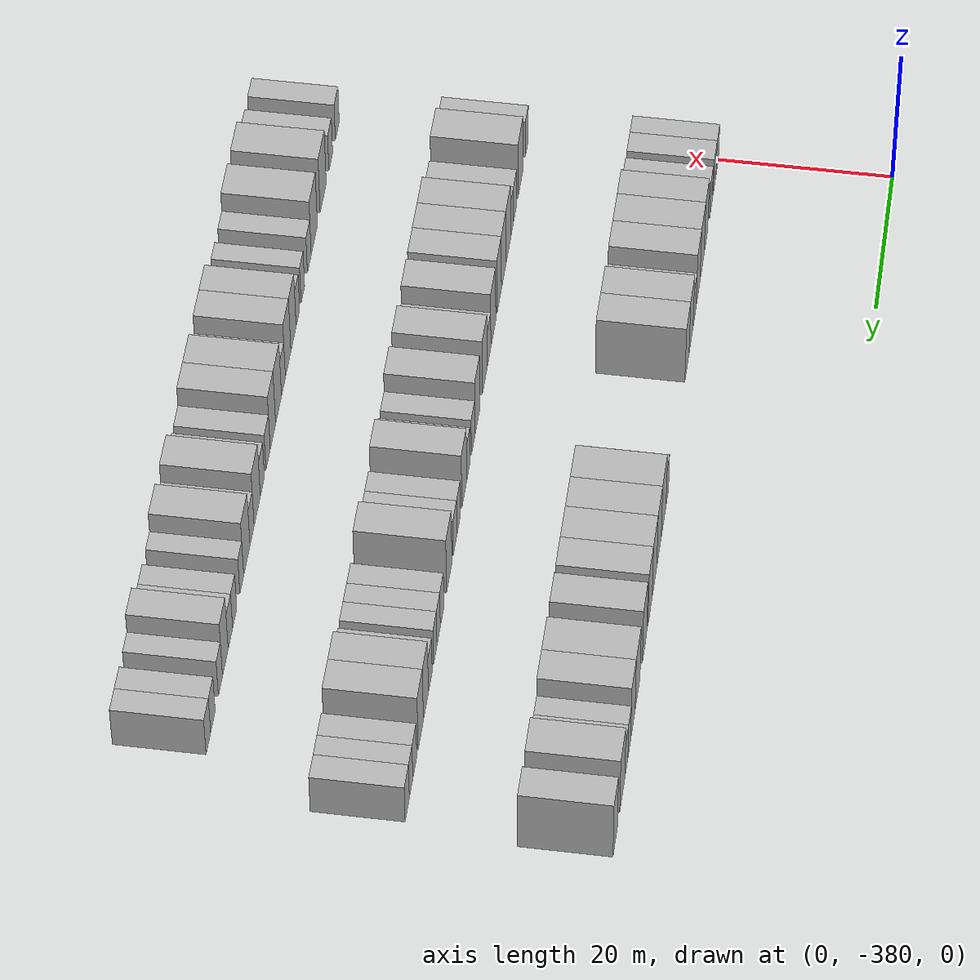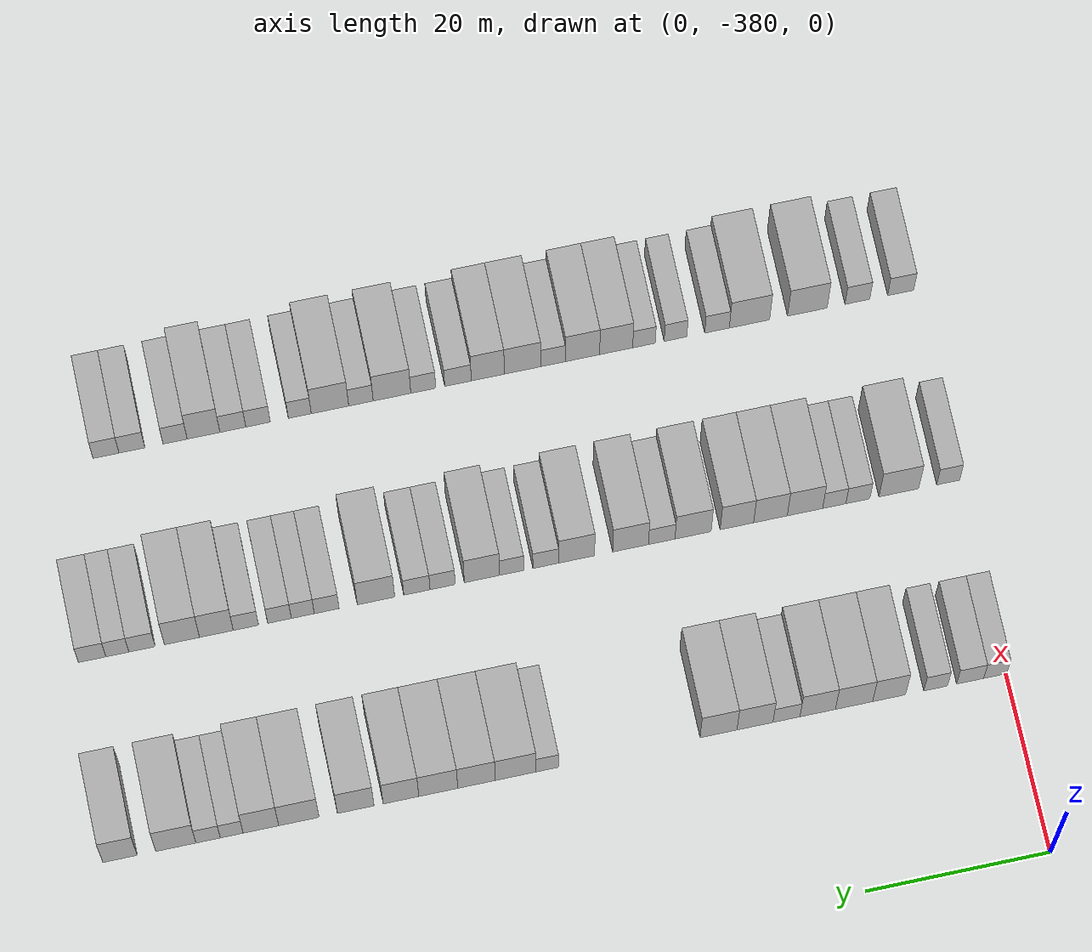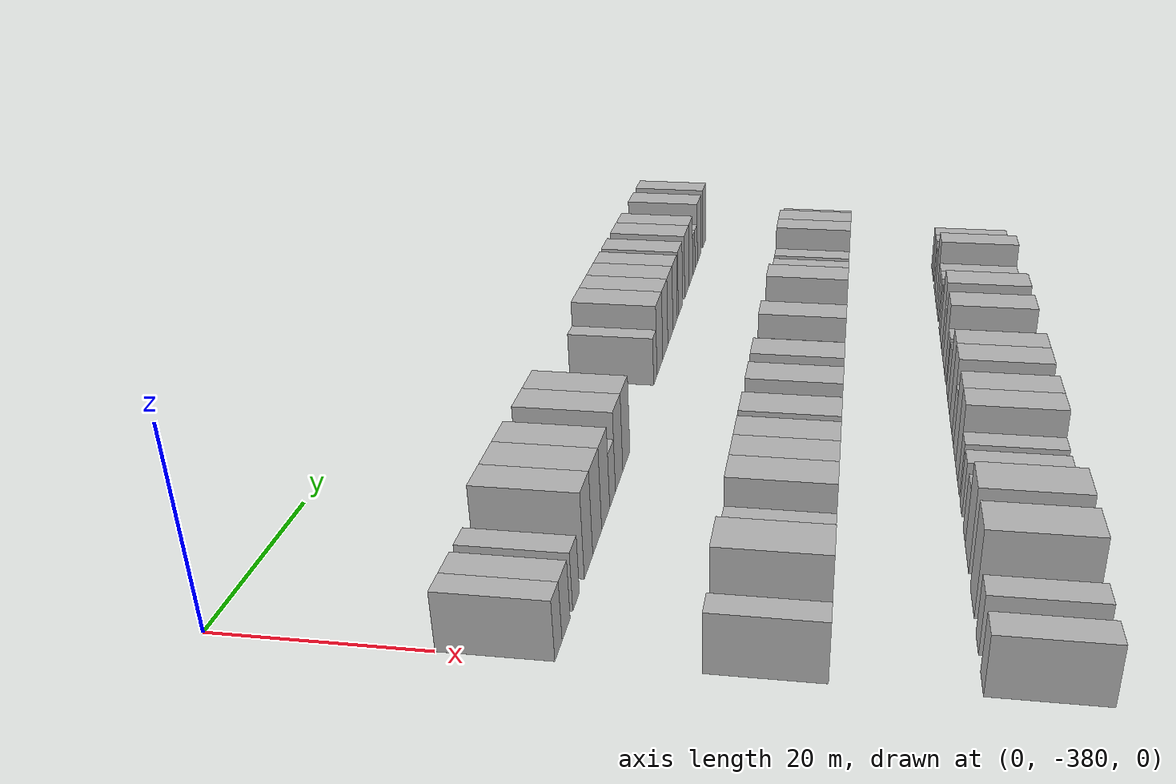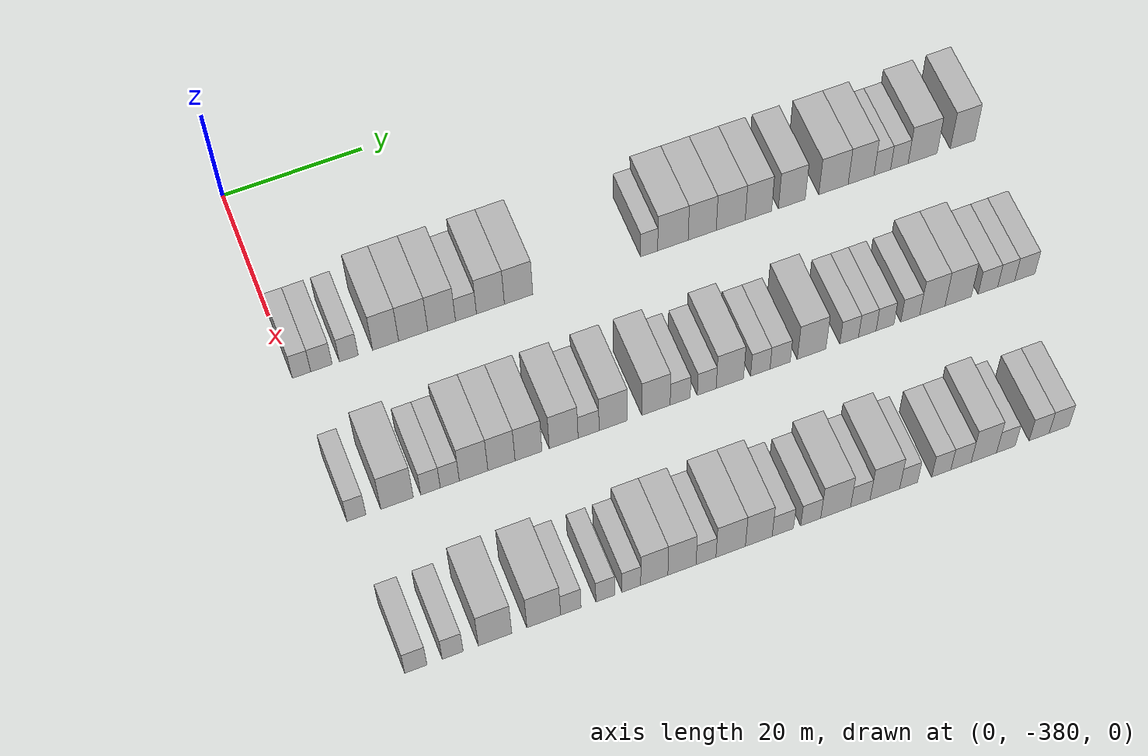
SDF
<sdf version="1.6">
 <world name="default">
  <model name="building_1">
   <static>1</static>
   <pose>25.0000 -378.7344 0 0.000000 0.000000 0.000000</pose>
   <link name="link">
    <pose>0 0 3.00 0 0 0</pose>
    <collision name="collision"><geometry><box><size>10.0000 2.5312 6.0000</size></box></geometry></collision>
    <visual name="visual">
     <cast_shadows>0</cast_shadows>
     <geometry><box><size>10.0000 2.5312 6.0000</size></box></geometry>
     <material>
      <script>
       <uri>model://HANNAS_wall/materials/scripts</uri>
       <uri>model://HANNAS_wall/materials/textures</uri>
       <name>vrc/HANNAS_wall</name>
      </script>
     </material>
    </visual>
   </link>
  </model>
  <model name="building_2">
   <static>1</static>
   <pose>25.0000 -375.9882 0 0.000000 0.000000 0.000000</pose>
   <link name="link">
    <pose>0 0 3.00 0 0 0</pose>
    <collision name="collision"><geometry><box><size>10.0000 2.9612 6.0000</size></box></geometry></collision>
    <visual name="visual">
     <cast_shadows>0</cast_shadows>
     <geometry><box><size>10.0000 2.9612 6.0000</size></box></geometry>
     <material>
      <script>
       <uri>model://HANNAS_wall/materials/scripts</uri>
       <uri>model://HANNAS_wall/materials/textures</uri>
       <name>vrc/HANNAS_wall</name>
      </script>
     </material>
    </visual>
   </link>
  </model>
  <model name="building_3">
   <static>1</static>
   <pose>25.0000 -372.2033 0 0.000000 0.000000 0.000000</pose>
   <link name="link">
    <pose>0 0 3.00 0 0 0</pose>
    <collision name="collision"><geometry><box><size>10.0000 2.6086 6.0000</size></box></geometry></collision>
    <visual name="visual">
     <cast_shadows>0</cast_shadows>
     <geometry><box><size>10.0000 2.6086 6.0000</size></box></geometry>
     <material>
      <script>
       <uri>model://HANNAS_wall/materials/scripts</uri>
       <uri>model://HANNAS_wall/materials/textures</uri>
       <name>vrc/HANNAS_wall</name>
      </script>
     </material>
    </visual>
   </link>
  </model>
  <model name="building_4">
   <static>1</static>
   <pose>25.0000 -367.0871 0 0.000000 0.000000 0.000000</pose>
   <link name="link">
    <pose>0 0 4.50 0 0 0</pose>
    <collision name="collision"><geometry><box><size>10.0000 3.6238 9.0000</size></box></geometry></collision>
    <visual name="visual">
     <cast_shadows>0</cast_shadows>
     <geometry><box><size>10.0000 3.6238 9.0000</size></box></geometry>
     <material>
      <script>
       <uri>model://HANNAS_wall/materials/scripts</uri>
       <uri>model://HANNAS_wall/materials/textures</uri>
       <name>vrc/HANNAS_wall</name>
      </script>
     </material>
    </visual>
   </link>
  </model>
  <model name="building_5">
   <static>1</static>
   <pose>25.0000 -363.2377 0 0.000000 0.000000 0.000000</pose>
   <link name="link">
    <pose>0 0 4.50 0 0 0</pose>
    <collision name="collision"><geometry><box><size>10.0000 4.0750 9.0000</size></box></geometry></collision>
    <visual name="visual">
     <cast_shadows>0</cast_shadows>
     <geometry><box><size>10.0000 4.0750 9.0000</size></box></geometry>
     <material>
      <script>
       <uri>model://HANNAS_wall/materials/scripts</uri>
       <uri>model://HANNAS_wall/materials/textures</uri>
       <name>vrc/HANNAS_wall</name>
      </script>
     </material>
    </visual>
   </link>
  </model>
  <model name="building_6">
   <static>1</static>
   <pose>25.0000 -359.2548 0 0.000000 0.000000 0.000000</pose>
   <link name="link">
    <pose>0 0 4.50 0 0 0</pose>
    <collision name="collision"><geometry><box><size>10.0000 3.8908 9.0000</size></box></geometry></collision>
    <visual name="visual">
     <cast_shadows>0</cast_shadows>
     <geometry><box><size>10.0000 3.8908 9.0000</size></box></geometry>
     <material>
      <script>
       <uri>model://HANNAS_wall/materials/scripts</uri>
       <uri>model://HANNAS_wall/materials/textures</uri>
       <name>vrc/HANNAS_wall</name>
      </script>
     </material>
    </visual>
   </link>
  </model>
  <model name="building_7">
   <static>1</static>
   <pose>25.0000 -355.8367 0 0.000000 0.000000 0.000000</pose>
   <link name="link">
    <pose>0 0 3.00 0 0 0</pose>
    <collision name="collision"><geometry><box><size>10.0000 2.9455 6.0000</size></box></geometry></collision>
    <visual name="visual">
     <cast_shadows>0</cast_shadows>
     <geometry><box><size>10.0000 2.9455 6.0000</size></box></geometry>
     <material>
      <script>
       <uri>model://HANNAS_wall/materials/scripts</uri>
       <uri>model://HANNAS_wall/materials/textures</uri>
       <name>vrc/HANNAS_wall</name>
      </script>
     </material>
    </visual>
   </link>
  </model>
  <model name="building_8">
   <static>1</static>
   <pose>25.0000 -352.3905 0 0.000000 0.000000 0.000000</pose>
   <link name="link">
    <pose>0 0 4.50 0 0 0</pose>
    <collision name="collision"><geometry><box><size>10.0000 3.9468 9.0000</size></box></geometry></collision>
    <visual name="visual">
     <cast_shadows>0</cast_shadows>
     <geometry><box><size>10.0000 3.9468 9.0000</size></box></geometry>
     <material>
      <script>
       <uri>model://HANNAS_wall/materials/scripts</uri>
       <uri>model://HANNAS_wall/materials/textures</uri>
       <name>vrc/HANNAS_wall</name>
      </script>
     </material>
    </visual>
   </link>
  </model>
  <model name="building_9">
   <static>1</static>
   <pose>25.0000 -348.4032 0 0.000000 0.000000 0.000000</pose>
   <link name="link">
    <pose>0 0 4.50 0 0 0</pose>
    <collision name="collision"><geometry><box><size>10.0000 4.0279 9.0000</size></box></geometry></collision>
    <visual name="visual">
     <cast_shadows>0</cast_shadows>
     <geometry><box><size>10.0000 4.0279 9.0000</size></box></geometry>
     <material>
      <script>
       <uri>model://HANNAS_wall/materials/scripts</uri>
       <uri>model://HANNAS_wall/materials/textures</uri>
       <name>vrc/HANNAS_wall</name>
      </script>
     </material>
    </visual>
   </link>
  </model>
  <model name="building_10">
   <static>1</static>
   <pose>25.0000 -329.7060 0 0.000000 0.000000 0.000000</pose>
   <link name="link">
    <pose>0 0 3.00 0 0 0</pose>
    <collision name="collision"><geometry><box><size>10.0000 2.4555 6.0000</size></box></geometry></collision>
    <visual name="visual">
     <cast_shadows>0</cast_shadows>
     <geometry><box><size>10.0000 2.4555 6.0000</size></box></geometry>
     <material>
      <script>
       <uri>model://HANNAS_wall/materials/scripts</uri>
       <uri>model://HANNAS_wall/materials/textures</uri>
       <name>vrc/HANNAS_wall</name>
      </script>
     </material>
    </visual>
   </link>
  </model>
  <model name="building_11">
   <static>1</static>
   <pose>25.0000 -326.2691 0 0.000000 0.000000 0.000000</pose>
   <link name="link">
    <pose>0 0 4.50 0 0 0</pose>
    <collision name="collision"><geometry><box><size>10.0000 4.4183 9.0000</size></box></geometry></collision>
    <visual name="visual">
     <cast_shadows>0</cast_shadows>
     <geometry><box><size>10.0000 4.4183 9.0000</size></box></geometry>
     <material>
      <script>
       <uri>model://HANNAS_wall/materials/scripts</uri>
       <uri>model://HANNAS_wall/materials/textures</uri>
       <name>vrc/HANNAS_wall</name>
      </script>
     </material>
    </visual>
   </link>
  </model>
  <model name="building_12">
   <static>1</static>
   <pose>25.0000 -322.0150 0 0.000000 0.000000 0.000000</pose>
   <link name="link">
    <pose>0 0 4.50 0 0 0</pose>
    <collision name="collision"><geometry><box><size>10.0000 4.0899 9.0000</size></box></geometry></collision>
    <visual name="visual">
     <cast_shadows>0</cast_shadows>
     <geometry><box><size>10.0000 4.0899 9.0000</size></box></geometry>
     <material>
      <script>
       <uri>model://HANNAS_wall/materials/scripts</uri>
       <uri>model://HANNAS_wall/materials/textures</uri>
       <name>vrc/HANNAS_wall</name>
      </script>
     </material>
    </visual>
   </link>
  </model>
  <model name="building_13">
   <static>1</static>
   <pose>25.0000 -317.8517 0 0.000000 0.000000 0.000000</pose>
   <link name="link">
    <pose>0 0 4.50 0 0 0</pose>
    <collision name="collision"><geometry><box><size>10.0000 4.2367 9.0000</size></box></geometry></collision>
    <visual name="visual">
     <cast_shadows>0</cast_shadows>
     <geometry><box><size>10.0000 4.2367 9.0000</size></box></geometry>
     <material>
      <script>
       <uri>model://HANNAS_wall/materials/scripts</uri>
       <uri>model://HANNAS_wall/materials/textures</uri>
       <name>vrc/HANNAS_wall</name>
      </script>
     </material>
    </visual>
   </link>
  </model>
  <model name="building_14">
   <static>1</static>
   <pose>25.0000 -313.8011 0 0.000000 0.000000 0.000000</pose>
   <link name="link">
    <pose>0 0 4.50 0 0 0</pose>
    <collision name="collision"><geometry><box><size>10.0000 3.8646 9.0000</size></box></geometry></collision>
    <visual name="visual">
     <cast_shadows>0</cast_shadows>
     <geometry><box><size>10.0000 3.8646 9.0000</size></box></geometry>
     <material>
      <script>
       <uri>model://HANNAS_wall/materials/scripts</uri>
       <uri>model://HANNAS_wall/materials/textures</uri>
       <name>vrc/HANNAS_wall</name>
      </script>
     </material>
    </visual>
   </link>
  </model>
  <model name="building_15">
   <static>1</static>
   <pose>25.0000 -308.8838 0 0.000000 0.000000 0.000000</pose>
   <link name="link">
    <pose>0 0 4.50 0 0 0</pose>
    <collision name="collision"><geometry><box><size>10.0000 3.9699 9.0000</size></box></geometry></collision>
    <visual name="visual">
     <cast_shadows>0</cast_shadows>
     <geometry><box><size>10.0000 3.9699 9.0000</size></box></geometry>
     <material>
      <script>
       <uri>model://HANNAS_wall/materials/scripts</uri>
       <uri>model://HANNAS_wall/materials/textures</uri>
       <name>vrc/HANNAS_wall</name>
      </script>
     </material>
    </visual>
   </link>
  </model>
  <model name="building_16">
   <static>1</static>
   <pose>25.0000 -302.7143 0 0.000000 0.000000 0.000000</pose>
   <link name="link">
    <pose>0 0 4.50 0 0 0</pose>
    <collision name="collision"><geometry><box><size>10.0000 4.3691 9.0000</size></box></geometry></collision>
    <visual name="visual">
     <cast_shadows>0</cast_shadows>
     <geometry><box><size>10.0000 4.3691 9.0000</size></box></geometry>
     <material>
      <script>
       <uri>model://HANNAS_wall/materials/scripts</uri>
       <uri>model://HANNAS_wall/materials/textures</uri>
       <name>vrc/HANNAS_wall</name>
      </script>
     </material>
    </visual>
   </link>
  </model>
  <model name="building_17">
   <static>1</static>
   <pose>25.0000 -298.6043 0 0.000000 0.000000 0.000000</pose>
   <link name="link">
    <pose>0 0 4.50 0 0 0</pose>
    <collision name="collision"><geometry><box><size>10.0000 3.8509 9.0000</size></box></geometry></collision>
    <visual name="visual">
     <cast_shadows>0</cast_shadows>
     <geometry><box><size>10.0000 3.8509 9.0000</size></box></geometry>
     <material>
      <script>
       <uri>model://HANNAS_wall/materials/scripts</uri>
       <uri>model://HANNAS_wall/materials/textures</uri>
       <name>vrc/HANNAS_wall</name>
      </script>
     </material>
    </visual>
   </link>
  </model>
  <model name="building_18">
   <static>1</static>
   <pose>25.0000 -295.4414 0 0.000000 0.000000 0.000000</pose>
   <link name="link">
    <pose>0 0 3.00 0 0 0</pose>
    <collision name="collision"><geometry><box><size>10.0000 2.4750 6.0000</size></box></geometry></collision>
    <visual name="visual">
     <cast_shadows>0</cast_shadows>
     <geometry><box><size>10.0000 2.4750 6.0000</size></box></geometry>
     <material>
      <script>
       <uri>model://HANNAS_wall/materials/scripts</uri>
       <uri>model://HANNAS_wall/materials/textures</uri>
       <name>vrc/HANNAS_wall</name>
      </script>
     </material>
    </visual>
   </link>
  </model>
  <model name="building_19">
   <static>1</static>
   <pose>25.0000 -292.8878 0 0.000000 0.000000 0.000000</pose>
   <link name="link">
    <pose>0 0 3.00 0 0 0</pose>
    <collision name="collision"><geometry><box><size>10.0000 2.6322 6.0000</size></box></geometry></collision>
    <visual name="visual">
     <cast_shadows>0</cast_shadows>
     <geometry><box><size>10.0000 2.6322 6.0000</size></box></geometry>
     <material>
      <script>
       <uri>model://HANNAS_wall/materials/scripts</uri>
       <uri>model://HANNAS_wall/materials/textures</uri>
       <name>vrc/HANNAS_wall</name>
      </script>
     </material>
    </visual>
   </link>
  </model>
  <model name="building_20">
   <static>1</static>
   <pose>25.0000 -289.3957 0 0.000000 0.000000 0.000000</pose>
   <link name="link">
    <pose>0 0 4.50 0 0 0</pose>
    <collision name="collision"><geometry><box><size>10.0000 4.3520 9.0000</size></box></geometry></collision>
    <visual name="visual">
     <cast_shadows>0</cast_shadows>
     <geometry><box><size>10.0000 4.3520 9.0000</size></box></geometry>
     <material>
      <script>
       <uri>model://HANNAS_wall/materials/scripts</uri>
       <uri>model://HANNAS_wall/materials/textures</uri>
       <name>vrc/HANNAS_wall</name>
      </script>
     </material>
    </visual>
   </link>
  </model>
  <model name="building_21">
   <static>1</static>
   <pose>25.0000 -283.3655 0 0.000000 0.000000 0.000000</pose>
   <link name="link">
    <pose>0 0 4.50 0 0 0</pose>
    <collision name="collision"><geometry><box><size>10.0000 3.7083 9.0000</size></box></geometry></collision>
    <visual name="visual">
     <cast_shadows>0</cast_shadows>
     <geometry><box><size>10.0000 3.7083 9.0000</size></box></geometry>
     <material>
      <script>
       <uri>model://HANNAS_wall/materials/scripts</uri>
       <uri>model://HANNAS_wall/materials/textures</uri>
       <name>vrc/HANNAS_wall</name>
      </script>
     </material>
    </visual>
   </link>
  </model>
  <model name="building_179">
   <static>1</static>
   <pose>47.0000 -378.7219 0 0.000000 0.000000 0.000000</pose>
   <link name="link">
    <pose>0 0 3.00 0 0 0</pose>
    <collision name="collision"><geometry><box><size>10.0000 2.5563 6.0000</size></box></geometry></collision>
    <visual name="visual">
     <cast_shadows>0</cast_shadows>
     <geometry><box><size>10.0000 2.5563 6.0000</size></box></geometry>
     <material>
      <script>
       <uri>model://HANNAS_wall/materials/scripts</uri>
       <uri>model://HANNAS_wall/materials/textures</uri>
       <name>vrc/HANNAS_wall</name>
      </script>
     </material>
    </visual>
   </link>
  </model>
  <model name="building_180">
   <static>1</static>
   <pose>47.0000 -373.2423 0 0.000000 0.000000 0.000000</pose>
   <link name="link">
    <pose>0 0 4.50 0 0 0</pose>
    <collision name="collision"><geometry><box><size>10.0000 4.4029 9.0000</size></box></geometry></collision>
    <visual name="visual">
     <cast_shadows>0</cast_shadows>
     <geometry><box><size>10.0000 4.4029 9.0000</size></box></geometry>
     <material>
      <script>
       <uri>model://HANNAS_wall/materials/scripts</uri>
       <uri>model://HANNAS_wall/materials/textures</uri>
       <name>vrc/HANNAS_wall</name>
      </script>
     </material>
    </visual>
   </link>
  </model>
  <model name="building_181">
   <static>1</static>
   <pose>47.0000 -368.7147 0 0.000000 0.000000 0.000000</pose>
   <link name="link">
    <pose>0 0 3.00 0 0 0</pose>
    <collision name="collision"><geometry><box><size>10.0000 2.6522 6.0000</size></box></geometry></collision>
    <visual name="visual">
     <cast_shadows>0</cast_shadows>
     <geometry><box><size>10.0000 2.6522 6.0000</size></box></geometry>
     <material>
      <script>
       <uri>model://HANNAS_wall/materials/scripts</uri>
       <uri>model://HANNAS_wall/materials/textures</uri>
       <name>vrc/HANNAS_wall</name>
      </script>
     </material>
    </visual>
   </link>
  </model>
  <model name="building_182">
   <static>1</static>
   <pose>47.0000 -366.0965 0 0.000000 0.000000 0.000000</pose>
   <link name="link">
    <pose>0 0 3.00 0 0 0</pose>
    <collision name="collision"><geometry><box><size>10.0000 2.5843 6.0000</size></box></geometry></collision>
    <visual name="visual">
     <cast_shadows>0</cast_shadows>
     <geometry><box><size>10.0000 2.5843 6.0000</size></box></geometry>
     <material>
      <script>
       <uri>model://HANNAS_wall/materials/scripts</uri>
       <uri>model://HANNAS_wall/materials/textures</uri>
       <name>vrc/HANNAS_wall</name>
      </script>
     </material>
    </visual>
   </link>
  </model>
  <model name="building_183">
   <static>1</static>
   <pose>47.0000 -362.8509 0 0.000000 0.000000 0.000000</pose>
   <link name="link">
    <pose>0 0 4.50 0 0 0</pose>
    <collision name="collision"><geometry><box><size>10.0000 3.9068 9.0000</size></box></geometry></collision>
    <visual name="visual">
     <cast_shadows>0</cast_shadows>
     <geometry><box><size>10.0000 3.9068 9.0000</size></box></geometry>
     <material>
      <script>
       <uri>model://HANNAS_wall/materials/scripts</uri>
       <uri>model://HANNAS_wall/materials/textures</uri>
       <name>vrc/HANNAS_wall</name>
      </script>
     </material>
    </visual>
   </link>
  </model>
  <model name="building_184">
   <static>1</static>
   <pose>47.0000 -359.0352 0 0.000000 0.000000 0.000000</pose>
   <link name="link">
    <pose>0 0 4.50 0 0 0</pose>
    <collision name="collision"><geometry><box><size>10.0000 3.7247 9.0000</size></box></geometry></collision>
    <visual name="visual">
     <cast_shadows>0</cast_shadows>
     <geometry><box><size>10.0000 3.7247 9.0000</size></box></geometry>
     <material>
      <script>
       <uri>model://HANNAS_wall/materials/scripts</uri>
       <uri>model://HANNAS_wall/materials/textures</uri>
       <name>vrc/HANNAS_wall</name>
      </script>
     </material>
    </visual>
   </link>
  </model>
  <model name="building_185">
   <static>1</static>
   <pose>47.0000 -355.3243 0 0.000000 0.000000 0.000000</pose>
   <link name="link">
    <pose>0 0 4.50 0 0 0</pose>
    <collision name="collision"><geometry><box><size>10.0000 3.6970 9.0000</size></box></geometry></collision>
    <visual name="visual">
     <cast_shadows>0</cast_shadows>
     <geometry><box><size>10.0000 3.6970 9.0000</size></box></geometry>
     <material>
      <script>
       <uri>model://HANNAS_wall/materials/scripts</uri>
       <uri>model://HANNAS_wall/materials/textures</uri>
       <name>vrc/HANNAS_wall</name>
      </script>
     </material>
    </visual>
   </link>
  </model>
  <model name="building_186">
   <static>1</static>
   <pose>47.0000 -350.4804 0 0.000000 0.000000 0.000000</pose>
   <link name="link">
    <pose>0 0 4.50 0 0 0</pose>
    <collision name="collision"><geometry><box><size>10.0000 3.9910 9.0000</size></box></geometry></collision>
    <visual name="visual">
     <cast_shadows>0</cast_shadows>
     <geometry><box><size>10.0000 3.9910 9.0000</size></box></geometry>
     <material>
      <script>
       <uri>model://HANNAS_wall/materials/scripts</uri>
       <uri>model://HANNAS_wall/materials/textures</uri>
       <name>vrc/HANNAS_wall</name>
      </script>
     </material>
    </visual>
   </link>
  </model>
  <model name="building_187">
   <static>1</static>
   <pose>47.0000 -347.0213 0 0.000000 0.000000 0.000000</pose>
   <link name="link">
    <pose>0 0 3.00 0 0 0</pose>
    <collision name="collision"><geometry><box><size>10.0000 2.9271 6.0000</size></box></geometry></collision>
    <visual name="visual">
     <cast_shadows>0</cast_shadows>
     <geometry><box><size>10.0000 2.9271 6.0000</size></box></geometry>
     <material>
      <script>
       <uri>model://HANNAS_wall/materials/scripts</uri>
       <uri>model://HANNAS_wall/materials/textures</uri>
       <name>vrc/HANNAS_wall</name>
      </script>
     </material>
    </visual>
   </link>
  </model>
  <model name="building_188">
   <static>1</static>
   <pose>47.0000 -343.5862 0 0.000000 0.000000 0.000000</pose>
   <link name="link">
    <pose>0 0 4.50 0 0 0</pose>
    <collision name="collision"><geometry><box><size>10.0000 3.9432 9.0000</size></box></geometry></collision>
    <visual name="visual">
     <cast_shadows>0</cast_shadows>
     <geometry><box><size>10.0000 3.9432 9.0000</size></box></geometry>
     <material>
      <script>
       <uri>model://HANNAS_wall/materials/scripts</uri>
       <uri>model://HANNAS_wall/materials/textures</uri>
       <name>vrc/HANNAS_wall</name>
      </script>
     </material>
    </visual>
   </link>
  </model>
  <model name="building_189">
   <static>1</static>
   <pose>47.0000 -337.6356 0 0.000000 0.000000 0.000000</pose>
   <link name="link">
    <pose>0 0 4.50 0 0 0</pose>
    <collision name="collision"><geometry><box><size>10.0000 3.9580 9.0000</size></box></geometry></collision>
    <visual name="visual">
     <cast_shadows>0</cast_shadows>
     <geometry><box><size>10.0000 3.9580 9.0000</size></box></geometry>
     <material>
      <script>
       <uri>model://HANNAS_wall/materials/scripts</uri>
       <uri>model://HANNAS_wall/materials/textures</uri>
       <name>vrc/HANNAS_wall</name>
      </script>
     </material>
    </visual>
   </link>
  </model>
  <model name="building_190">
   <static>1</static>
   <pose>47.0000 -334.2455 0 0.000000 0.000000 0.000000</pose>
   <link name="link">
    <pose>0 0 3.00 0 0 0</pose>
    <collision name="collision"><geometry><box><size>10.0000 2.8222 6.0000</size></box></geometry></collision>
    <visual name="visual">
     <cast_shadows>0</cast_shadows>
     <geometry><box><size>10.0000 2.8222 6.0000</size></box></geometry>
     <material>
      <script>
       <uri>model://HANNAS_wall/materials/scripts</uri>
       <uri>model://HANNAS_wall/materials/textures</uri>
       <name>vrc/HANNAS_wall</name>
      </script>
     </material>
    </visual>
   </link>
  </model>
  <model name="building_191">
   <static>1</static>
   <pose>47.0000 -330.5057 0 0.000000 0.000000 0.000000</pose>
   <link name="link">
    <pose>0 0 3.00 0 0 0</pose>
    <collision name="collision"><geometry><box><size>10.0000 2.6575 6.0000</size></box></geometry></collision>
    <visual name="visual">
     <cast_shadows>0</cast_shadows>
     <geometry><box><size>10.0000 2.6575 6.0000</size></box></geometry>
     <material>
      <script>
       <uri>model://HANNAS_wall/materials/scripts</uri>
       <uri>model://HANNAS_wall/materials/textures</uri>
       <name>vrc/HANNAS_wall</name>
      </script>
     </material>
    </visual>
   </link>
  </model>
  <model name="building_192">
   <static>1</static>
   <pose>47.0000 -327.2372 0 0.000000 0.000000 0.000000</pose>
   <link name="link">
    <pose>0 0 4.50 0 0 0</pose>
    <collision name="collision"><geometry><box><size>10.0000 3.8794 9.0000</size></box></geometry></collision>
    <visual name="visual">
     <cast_shadows>0</cast_shadows>
     <geometry><box><size>10.0000 3.8794 9.0000</size></box></geometry>
     <material>
      <script>
       <uri>model://HANNAS_wall/materials/scripts</uri>
       <uri>model://HANNAS_wall/materials/textures</uri>
       <name>vrc/HANNAS_wall</name>
      </script>
     </material>
    </visual>
   </link>
  </model>
  <model name="building_193">
   <static>1</static>
   <pose>47.0000 -322.9131 0 0.000000 0.000000 0.000000</pose>
   <link name="link">
    <pose>0 0 3.00 0 0 0</pose>
    <collision name="collision"><geometry><box><size>10.0000 2.7689 6.0000</size></box></geometry></collision>
    <visual name="visual">
     <cast_shadows>0</cast_shadows>
     <geometry><box><size>10.0000 2.7689 6.0000</size></box></geometry>
     <material>
      <script>
       <uri>model://HANNAS_wall/materials/scripts</uri>
       <uri>model://HANNAS_wall/materials/textures</uri>
       <name>vrc/HANNAS_wall</name>
      </script>
     </material>
    </visual>
   </link>
  </model>
  <model name="building_194">
   <static>1</static>
   <pose>47.0000 -320.0884 0 0.000000 0.000000 0.000000</pose>
   <link name="link">
    <pose>0 0 3.00 0 0 0</pose>
    <collision name="collision"><geometry><box><size>10.0000 2.8806 6.0000</size></box></geometry></collision>
    <visual name="visual">
     <cast_shadows>0</cast_shadows>
     <geometry><box><size>10.0000 2.8806 6.0000</size></box></geometry>
     <material>
      <script>
       <uri>model://HANNAS_wall/materials/scripts</uri>
       <uri>model://HANNAS_wall/materials/textures</uri>
       <name>vrc/HANNAS_wall</name>
      </script>
     </material>
    </visual>
   </link>
  </model>
  <model name="building_195">
   <static>1</static>
   <pose>47.0000 -315.5988 0 0.000000 0.000000 0.000000</pose>
   <link name="link">
    <pose>0 0 4.50 0 0 0</pose>
    <collision name="collision"><geometry><box><size>10.0000 4.0986 9.0000</size></box></geometry></collision>
    <visual name="visual">
     <cast_shadows>0</cast_shadows>
     <geometry><box><size>10.0000 4.0986 9.0000</size></box></geometry>
     <material>
      <script>
       <uri>model://HANNAS_wall/materials/scripts</uri>
       <uri>model://HANNAS_wall/materials/textures</uri>
       <name>vrc/HANNAS_wall</name>
      </script>
     </material>
    </visual>
   </link>
  </model>
  <model name="building_196">
   <static>1</static>
   <pose>47.0000 -310.1939 0 0.000000 0.000000 0.000000</pose>
   <link name="link">
    <pose>0 0 3.00 0 0 0</pose>
    <collision name="collision"><geometry><box><size>10.0000 2.7112 6.0000</size></box></geometry></collision>
    <visual name="visual">
     <cast_shadows>0</cast_shadows>
     <geometry><box><size>10.0000 2.7112 6.0000</size></box></geometry>
     <material>
      <script>
       <uri>model://HANNAS_wall/materials/scripts</uri>
       <uri>model://HANNAS_wall/materials/textures</uri>
       <name>vrc/HANNAS_wall</name>
      </script>
     </material>
    </visual>
   </link>
  </model>
  <model name="building_197">
   <static>1</static>
   <pose>47.0000 -307.5767 0 0.000000 0.000000 0.000000</pose>
   <link name="link">
    <pose>0 0 3.00 0 0 0</pose>
    <collision name="collision"><geometry><box><size>10.0000 2.5232 6.0000</size></box></geometry></collision>
    <visual name="visual">
     <cast_shadows>0</cast_shadows>
     <geometry><box><size>10.0000 2.5232 6.0000</size></box></geometry>
     <material>
      <script>
       <uri>model://HANNAS_wall/materials/scripts</uri>
       <uri>model://HANNAS_wall/materials/textures</uri>
       <name>vrc/HANNAS_wall</name>
      </script>
     </material>
    </visual>
   </link>
  </model>
  <model name="building_198">
   <static>1</static>
   <pose>47.0000 -305.0230 0 0.000000 0.000000 0.000000</pose>
   <link name="link">
    <pose>0 0 3.00 0 0 0</pose>
    <collision name="collision"><geometry><box><size>10.0000 2.5842 6.0000</size></box></geometry></collision>
    <visual name="visual">
     <cast_shadows>0</cast_shadows>
     <geometry><box><size>10.0000 2.5842 6.0000</size></box></geometry>
     <material>
      <script>
       <uri>model://HANNAS_wall/materials/scripts</uri>
       <uri>model://HANNAS_wall/materials/textures</uri>
       <name>vrc/HANNAS_wall</name>
      </script>
     </material>
    </visual>
   </link>
  </model>
  <model name="building_199">
   <static>1</static>
   <pose>47.0000 -301.3471 0 0.000000 0.000000 0.000000</pose>
   <link name="link">
    <pose>0 0 3.00 0 0 0</pose>
    <collision name="collision"><geometry><box><size>10.0000 2.7677 6.0000</size></box></geometry></collision>
    <visual name="visual">
     <cast_shadows>0</cast_shadows>
     <geometry><box><size>10.0000 2.7677 6.0000</size></box></geometry>
     <material>
      <script>
       <uri>model://HANNAS_wall/materials/scripts</uri>
       <uri>model://HANNAS_wall/materials/textures</uri>
       <name>vrc/HANNAS_wall</name>
      </script>
     </material>
    </visual>
   </link>
  </model>
  <model name="building_200">
   <static>1</static>
   <pose>47.0000 -298.1238 0 0.000000 0.000000 0.000000</pose>
   <link name="link">
    <pose>0 0 4.50 0 0 0</pose>
    <collision name="collision"><geometry><box><size>10.0000 3.6789 9.0000</size></box></geometry></collision>
    <visual name="visual">
     <cast_shadows>0</cast_shadows>
     <geometry><box><size>10.0000 3.6789 9.0000</size></box></geometry>
     <material>
      <script>
       <uri>model://HANNAS_wall/materials/scripts</uri>
       <uri>model://HANNAS_wall/materials/textures</uri>
       <name>vrc/HANNAS_wall</name>
      </script>
     </material>
    </visual>
   </link>
  </model>
  <model name="building_201">
   <static>1</static>
   <pose>47.0000 -294.3620 0 0.000000 0.000000 0.000000</pose>
   <link name="link">
    <pose>0 0 4.50 0 0 0</pose>
    <collision name="collision"><geometry><box><size>10.0000 3.8447 9.0000</size></box></geometry></collision>
    <visual name="visual">
     <cast_shadows>0</cast_shadows>
     <geometry><box><size>10.0000 3.8447 9.0000</size></box></geometry>
     <material>
      <script>
       <uri>model://HANNAS_wall/materials/scripts</uri>
       <uri>model://HANNAS_wall/materials/textures</uri>
       <name>vrc/HANNAS_wall</name>
      </script>
     </material>
    </visual>
   </link>
  </model>
  <model name="building_202">
   <static>1</static>
   <pose>47.0000 -289.9996 0 0.000000 0.000000 0.000000</pose>
   <link name="link">
    <pose>0 0 3.00 0 0 0</pose>
    <collision name="collision"><geometry><box><size>10.0000 2.8800 6.0000</size></box></geometry></collision>
    <visual name="visual">
     <cast_shadows>0</cast_shadows>
     <geometry><box><size>10.0000 2.8800 6.0000</size></box></geometry>
     <material>
      <script>
       <uri>model://HANNAS_wall/materials/scripts</uri>
       <uri>model://HANNAS_wall/materials/textures</uri>
       <name>vrc/HANNAS_wall</name>
      </script>
     </material>
    </visual>
   </link>
  </model>
  <model name="building_203">
   <static>1</static>
   <pose>47.0000 -287.3049 0 0.000000 0.000000 0.000000</pose>
   <link name="link">
    <pose>0 0 3.00 0 0 0</pose>
    <collision name="collision"><geometry><box><size>10.0000 2.5094 6.0000</size></box></geometry></collision>
    <visual name="visual">
     <cast_shadows>0</cast_shadows>
     <geometry><box><size>10.0000 2.5094 6.0000</size></box></geometry>
     <material>
      <script>
       <uri>model://HANNAS_wall/materials/scripts</uri>
       <uri>model://HANNAS_wall/materials/textures</uri>
       <name>vrc/HANNAS_wall</name>
      </script>
     </material>
    </visual>
   </link>
  </model>
  <model name="building_204">
   <static>1</static>
   <pose>47.0000 -284.5536 0 0.000000 0.000000 0.000000</pose>
   <link name="link">
    <pose>0 0 3.00 0 0 0</pose>
    <collision name="collision"><geometry><box><size>10.0000 2.9933 6.0000</size></box></geometry></collision>
    <visual name="visual">
     <cast_shadows>0</cast_shadows>
     <geometry><box><size>10.0000 2.9933 6.0000</size></box></geometry>
     <material>
      <script>
       <uri>model://HANNAS_wall/materials/scripts</uri>
       <uri>model://HANNAS_wall/materials/textures</uri>
       <name>vrc/HANNAS_wall</name>
      </script>
     </material>
    </visual>
   </link>
  </model>
  <model name="building_374">
   <static>1</static>
   <pose>69.0000 -378.5408 0 0.000000 0.000000 0.000000</pose>
   <link name="link">
    <pose>0 0 3.00 0 0 0</pose>
    <collision name="collision"><geometry><box><size>10.0000 2.9184 6.0000</size></box></geometry></collision>
    <visual name="visual">
     <cast_shadows>0</cast_shadows>
     <geometry><box><size>10.0000 2.9184 6.0000</size></box></geometry>
     <material>
      <script>
       <uri>model://HANNAS_wall/materials/scripts</uri>
       <uri>model://HANNAS_wall/materials/textures</uri>
       <name>vrc/HANNAS_wall</name>
      </script>
     </material>
    </visual>
   </link>
  </model>
  <model name="building_375">
   <static>1</static>
   <pose>69.0000 -373.6995 0 0.000000 0.000000 0.000000</pose>
   <link name="link">
    <pose>0 0 3.00 0 0 0</pose>
    <collision name="collision"><geometry><box><size>10.0000 2.7642 6.0000</size></box></geometry></collision>
    <visual name="visual">
     <cast_shadows>0</cast_shadows>
     <geometry><box><size>10.0000 2.7642 6.0000</size></box></geometry>
     <material>
      <script>
       <uri>model://HANNAS_wall/materials/scripts</uri>
       <uri>model://HANNAS_wall/materials/textures</uri>
       <name>vrc/HANNAS_wall</name>
      </script>
     </material>
    </visual>
   </link>
  </model>
  <model name="building_376">
   <static>1</static>
   <pose>69.0000 -368.1015 0 0.000000 0.000000 0.000000</pose>
   <link name="link">
    <pose>0 0 4.50 0 0 0</pose>
    <collision name="collision"><geometry><box><size>10.0000 4.4318 9.0000</size></box></geometry></collision>
    <visual name="visual">
     <cast_shadows>0</cast_shadows>
     <geometry><box><size>10.0000 4.4318 9.0000</size></box></geometry>
     <material>
      <script>
       <uri>model://HANNAS_wall/materials/scripts</uri>
       <uri>model://HANNAS_wall/materials/textures</uri>
       <name>vrc/HANNAS_wall</name>
      </script>
     </material>
    </visual>
   </link>
  </model>
  <model name="building_377">
   <static>1</static>
   <pose>69.0000 -361.6362 0 0.000000 0.000000 0.000000</pose>
   <link name="link">
    <pose>0 0 4.50 0 0 0</pose>
    <collision name="collision"><geometry><box><size>10.0000 4.4990 9.0000</size></box></geometry></collision>
    <visual name="visual">
     <cast_shadows>0</cast_shadows>
     <geometry><box><size>10.0000 4.4990 9.0000</size></box></geometry>
     <material>
      <script>
       <uri>model://HANNAS_wall/materials/scripts</uri>
       <uri>model://HANNAS_wall/materials/textures</uri>
       <name>vrc/HANNAS_wall</name>
      </script>
     </material>
    </visual>
   </link>
  </model>
  <model name="building_378">
   <static>1</static>
   <pose>69.0000 -358.0178 0 0.000000 0.000000 0.000000</pose>
   <link name="link">
    <pose>0 0 3.00 0 0 0</pose>
    <collision name="collision"><geometry><box><size>10.0000 2.7378 6.0000</size></box></geometry></collision>
    <visual name="visual">
     <cast_shadows>0</cast_shadows>
     <geometry><box><size>10.0000 2.7378 6.0000</size></box></geometry>
     <material>
      <script>
       <uri>model://HANNAS_wall/materials/scripts</uri>
       <uri>model://HANNAS_wall/materials/textures</uri>
       <name>vrc/HANNAS_wall</name>
      </script>
     </material>
    </visual>
   </link>
  </model>
  <model name="building_379">
   <static>1</static>
   <pose>69.0000 -353.3884 0 0.000000 0.000000 0.000000</pose>
   <link name="link">
    <pose>0 0 3.00 0 0 0</pose>
    <collision name="collision"><geometry><box><size>10.0000 2.5209 6.0000</size></box></geometry></collision>
    <visual name="visual">
     <cast_shadows>0</cast_shadows>
     <geometry><box><size>10.0000 2.5209 6.0000</size></box></geometry>
     <material>
      <script>
       <uri>model://HANNAS_wall/materials/scripts</uri>
       <uri>model://HANNAS_wall/materials/textures</uri>
       <name>vrc/HANNAS_wall</name>
      </script>
     </material>
    </visual>
   </link>
  </model>
  <model name="building_380">
   <static>1</static>
   <pose>69.0000 -349.8708 0 0.000000 0.000000 0.000000</pose>
   <link name="link">
    <pose>0 0 3.00 0 0 0</pose>
    <collision name="collision"><geometry><box><size>10.0000 2.5142 6.0000</size></box></geometry></collision>
    <visual name="visual">
     <cast_shadows>0</cast_shadows>
     <geometry><box><size>10.0000 2.5142 6.0000</size></box></geometry>
     <material>
      <script>
       <uri>model://HANNAS_wall/materials/scripts</uri>
       <uri>model://HANNAS_wall/materials/textures</uri>
       <name>vrc/HANNAS_wall</name>
      </script>
     </material>
    </visual>
   </link>
  </model>
  <model name="building_381">
   <static>1</static>
   <pose>69.0000 -346.7760 0 0.000000 0.000000 0.000000</pose>
   <link name="link">
    <pose>0 0 4.50 0 0 0</pose>
    <collision name="collision"><geometry><box><size>10.0000 3.6756 9.0000</size></box></geometry></collision>
    <visual name="visual">
     <cast_shadows>0</cast_shadows>
     <geometry><box><size>10.0000 3.6756 9.0000</size></box></geometry>
     <material>
      <script>
       <uri>model://HANNAS_wall/materials/scripts</uri>
       <uri>model://HANNAS_wall/materials/textures</uri>
       <name>vrc/HANNAS_wall</name>
      </script>
     </material>
    </visual>
   </link>
  </model>
  <model name="building_382">
   <static>1</static>
   <pose>69.0000 -343.0248 0 0.000000 0.000000 0.000000</pose>
   <link name="link">
    <pose>0 0 4.50 0 0 0</pose>
    <collision name="collision"><geometry><box><size>10.0000 3.8267 9.0000</size></box></geometry></collision>
    <visual name="visual">
     <cast_shadows>0</cast_shadows>
     <geometry><box><size>10.0000 3.8267 9.0000</size></box></geometry>
     <material>
      <script>
       <uri>model://HANNAS_wall/materials/scripts</uri>
       <uri>model://HANNAS_wall/materials/textures</uri>
       <name>vrc/HANNAS_wall</name>
      </script>
     </material>
    </visual>
   </link>
  </model>
  <model name="building_383">
   <static>1</static>
   <pose>69.0000 -339.7500 0 0.000000 0.000000 0.000000</pose>
   <link name="link">
    <pose>0 0 3.00 0 0 0</pose>
    <collision name="collision"><geometry><box><size>10.0000 2.7230 6.0000</size></box></geometry></collision>
    <visual name="visual">
     <cast_shadows>0</cast_shadows>
     <geometry><box><size>10.0000 2.7230 6.0000</size></box></geometry>
     <material>
      <script>
       <uri>model://HANNAS_wall/materials/scripts</uri>
       <uri>model://HANNAS_wall/materials/textures</uri>
       <name>vrc/HANNAS_wall</name>
      </script>
     </material>
    </visual>
   </link>
  </model>
  <model name="building_384">
   <static>1</static>
   <pose>69.0000 -336.3726 0 0.000000 0.000000 0.000000</pose>
   <link name="link">
    <pose>0 0 4.50 0 0 0</pose>
    <collision name="collision"><geometry><box><size>10.0000 4.0319 9.0000</size></box></geometry></collision>
    <visual name="visual">
     <cast_shadows>0</cast_shadows>
     <geometry><box><size>10.0000 4.0319 9.0000</size></box></geometry>
     <material>
      <script>
       <uri>model://HANNAS_wall/materials/scripts</uri>
       <uri>model://HANNAS_wall/materials/textures</uri>
       <name>vrc/HANNAS_wall</name>
      </script>
     </material>
    </visual>
   </link>
  </model>
  <model name="building_385">
   <static>1</static>
   <pose>69.0000 -332.5169 0 0.000000 0.000000 0.000000</pose>
   <link name="link">
    <pose>0 0 4.50 0 0 0</pose>
    <collision name="collision"><geometry><box><size>10.0000 3.6794 9.0000</size></box></geometry></collision>
    <visual name="visual">
     <cast_shadows>0</cast_shadows>
     <geometry><box><size>10.0000 3.6794 9.0000</size></box></geometry>
     <material>
      <script>
       <uri>model://HANNAS_wall/materials/scripts</uri>
       <uri>model://HANNAS_wall/materials/textures</uri>
       <name>vrc/HANNAS_wall</name>
      </script>
     </material>
    </visual>
   </link>
  </model>
  <model name="building_386">
   <static>1</static>
   <pose>69.0000 -329.2042 0 0.000000 0.000000 0.000000</pose>
   <link name="link">
    <pose>0 0 3.00 0 0 0</pose>
    <collision name="collision"><geometry><box><size>10.0000 2.9460 6.0000</size></box></geometry></collision>
    <visual name="visual">
     <cast_shadows>0</cast_shadows>
     <geometry><box><size>10.0000 2.9460 6.0000</size></box></geometry>
     <material>
      <script>
       <uri>model://HANNAS_wall/materials/scripts</uri>
       <uri>model://HANNAS_wall/materials/textures</uri>
       <name>vrc/HANNAS_wall</name>
      </script>
     </material>
    </visual>
   </link>
  </model>
  <model name="building_387">
   <static>1</static>
   <pose>69.0000 -325.3502 0 0.000000 0.000000 0.000000</pose>
   <link name="link">
    <pose>0 0 3.00 0 0 0</pose>
    <collision name="collision"><geometry><box><size>10.0000 2.7620 6.0000</size></box></geometry></collision>
    <visual name="visual">
     <cast_shadows>0</cast_shadows>
     <geometry><box><size>10.0000 2.7620 6.0000</size></box></geometry>
     <material>
      <script>
       <uri>model://HANNAS_wall/materials/scripts</uri>
       <uri>model://HANNAS_wall/materials/textures</uri>
       <name>vrc/HANNAS_wall</name>
      </script>
     </material>
    </visual>
   </link>
  </model>
  <model name="building_388">
   <static>1</static>
   <pose>69.0000 -321.8872 0 0.000000 0.000000 0.000000</pose>
   <link name="link">
    <pose>0 0 4.50 0 0 0</pose>
    <collision name="collision"><geometry><box><size>10.0000 4.1639 9.0000</size></box></geometry></collision>
    <visual name="visual">
     <cast_shadows>0</cast_shadows>
     <geometry><box><size>10.0000 4.1639 9.0000</size></box></geometry>
     <material>
      <script>
       <uri>model://HANNAS_wall/materials/scripts</uri>
       <uri>model://HANNAS_wall/materials/textures</uri>
       <name>vrc/HANNAS_wall</name>
      </script>
     </material>
    </visual>
   </link>
  </model>
  <model name="building_389">
   <static>1</static>
   <pose>69.0000 -318.4465 0 0.000000 0.000000 0.000000</pose>
   <link name="link">
    <pose>0 0 3.00 0 0 0</pose>
    <collision name="collision"><geometry><box><size>10.0000 2.7175 6.0000</size></box></geometry></collision>
    <visual name="visual">
     <cast_shadows>0</cast_shadows>
     <geometry><box><size>10.0000 2.7175 6.0000</size></box></geometry>
     <material>
      <script>
       <uri>model://HANNAS_wall/materials/scripts</uri>
       <uri>model://HANNAS_wall/materials/textures</uri>
       <name>vrc/HANNAS_wall</name>
      </script>
     </material>
    </visual>
   </link>
  </model>
  <model name="building_390">
   <static>1</static>
   <pose>69.0000 -315.0159 0 0.000000 0.000000 0.000000</pose>
   <link name="link">
    <pose>0 0 4.50 0 0 0</pose>
    <collision name="collision"><geometry><box><size>10.0000 4.1436 9.0000</size></box></geometry></collision>
    <visual name="visual">
     <cast_shadows>0</cast_shadows>
     <geometry><box><size>10.0000 4.1436 9.0000</size></box></geometry>
     <material>
      <script>
       <uri>model://HANNAS_wall/materials/scripts</uri>
       <uri>model://HANNAS_wall/materials/textures</uri>
       <name>vrc/HANNAS_wall</name>
      </script>
     </material>
    </visual>
   </link>
  </model>
  <model name="building_391">
   <static>1</static>
   <pose>69.0000 -311.6789 0 0.000000 0.000000 0.000000</pose>
   <link name="link">
    <pose>0 0 3.00 0 0 0</pose>
    <collision name="collision"><geometry><box><size>10.0000 2.5303 6.0000</size></box></geometry></collision>
    <visual name="visual">
     <cast_shadows>0</cast_shadows>
     <geometry><box><size>10.0000 2.5303 6.0000</size></box></geometry>
     <material>
      <script>
       <uri>model://HANNAS_wall/materials/scripts</uri>
       <uri>model://HANNAS_wall/materials/textures</uri>
       <name>vrc/HANNAS_wall</name>
      </script>
     </material>
    </visual>
   </link>
  </model>
  <model name="building_392">
   <static>1</static>
   <pose>69.0000 -307.0628 0 0.000000 0.000000 0.000000</pose>
   <link name="link">
    <pose>0 0 3.00 0 0 0</pose>
    <collision name="collision"><geometry><box><size>10.0000 2.7019 6.0000</size></box></geometry></collision>
    <visual name="visual">
     <cast_shadows>0</cast_shadows>
     <geometry><box><size>10.0000 2.7019 6.0000</size></box></geometry>
     <material>
      <script>
       <uri>model://HANNAS_wall/materials/scripts</uri>
       <uri>model://HANNAS_wall/materials/textures</uri>
       <name>vrc/HANNAS_wall</name>
      </script>
     </material>
    </visual>
   </link>
  </model>
  <model name="building_393">
   <static>1</static>
   <pose>69.0000 -304.2813 0 0.000000 0.000000 0.000000</pose>
   <link name="link">
    <pose>0 0 3.00 0 0 0</pose>
    <collision name="collision"><geometry><box><size>10.0000 2.8611 6.0000</size></box></geometry></collision>
    <visual name="visual">
     <cast_shadows>0</cast_shadows>
     <geometry><box><size>10.0000 2.8611 6.0000</size></box></geometry>
     <material>
      <script>
       <uri>model://HANNAS_wall/materials/scripts</uri>
       <uri>model://HANNAS_wall/materials/textures</uri>
       <name>vrc/HANNAS_wall</name>
      </script>
     </material>
    </visual>
   </link>
  </model>
  <model name="building_394">
   <static>1</static>
   <pose>69.0000 -301.0438 0 0.000000 0.000000 0.000000</pose>
   <link name="link">
    <pose>0 0 4.50 0 0 0</pose>
    <collision name="collision"><geometry><box><size>10.0000 3.6140 9.0000</size></box></geometry></collision>
    <visual name="visual">
     <cast_shadows>0</cast_shadows>
     <geometry><box><size>10.0000 3.6140 9.0000</size></box></geometry>
     <material>
      <script>
       <uri>model://HANNAS_wall/materials/scripts</uri>
       <uri>model://HANNAS_wall/materials/textures</uri>
       <name>vrc/HANNAS_wall</name>
      </script>
     </material>
    </visual>
   </link>
  </model>
  <model name="building_395">
   <static>1</static>
   <pose>69.0000 -297.9093 0 0.000000 0.000000 0.000000</pose>
   <link name="link">
    <pose>0 0 3.00 0 0 0</pose>
    <collision name="collision"><geometry><box><size>10.0000 2.6549 6.0000</size></box></geometry></collision>
    <visual name="visual">
     <cast_shadows>0</cast_shadows>
     <geometry><box><size>10.0000 2.6549 6.0000</size></box></geometry>
     <material>
      <script>
       <uri>model://HANNAS_wall/materials/scripts</uri>
       <uri>model://HANNAS_wall/materials/textures</uri>
       <name>vrc/HANNAS_wall</name>
      </script>
     </material>
    </visual>
   </link>
  </model>
  <model name="building_396">
   <static>1</static>
   <pose>69.0000 -293.1512 0 0.000000 0.000000 0.000000</pose>
   <link name="link">
    <pose>0 0 3.00 0 0 0</pose>
    <collision name="collision"><geometry><box><size>10.0000 2.8613 6.0000</size></box></geometry></collision>
    <visual name="visual">
     <cast_shadows>0</cast_shadows>
     <geometry><box><size>10.0000 2.8613 6.0000</size></box></geometry>
     <material>
      <script>
       <uri>model://HANNAS_wall/materials/scripts</uri>
       <uri>model://HANNAS_wall/materials/textures</uri>
       <name>vrc/HANNAS_wall</name>
      </script>
     </material>
    </visual>
   </link>
  </model>
  <model name="building_397">
   <static>1</static>
   <pose>69.0000 -290.2874 0 0.000000 0.000000 0.000000</pose>
   <link name="link">
    <pose>0 0 3.00 0 0 0</pose>
    <collision name="collision"><geometry><box><size>10.0000 2.8663 6.0000</size></box></geometry></collision>
    <visual name="visual">
     <cast_shadows>0</cast_shadows>
     <geometry><box><size>10.0000 2.8663 6.0000</size></box></geometry>
     <material>
      <script>
       <uri>model://HANNAS_wall/materials/scripts</uri>
       <uri>model://HANNAS_wall/materials/textures</uri>
       <name>vrc/HANNAS_wall</name>
      </script>
     </material>
    </visual>
   </link>
  </model>
 </world>
</sdf>
